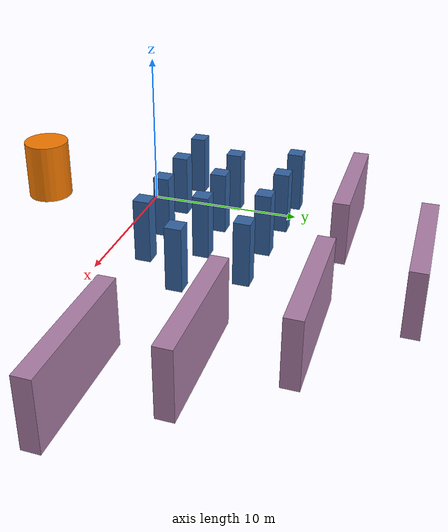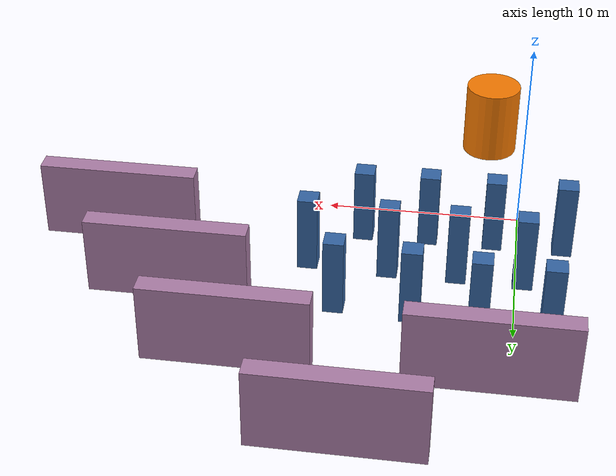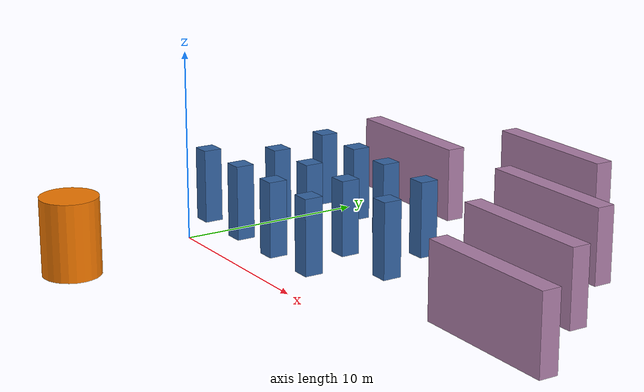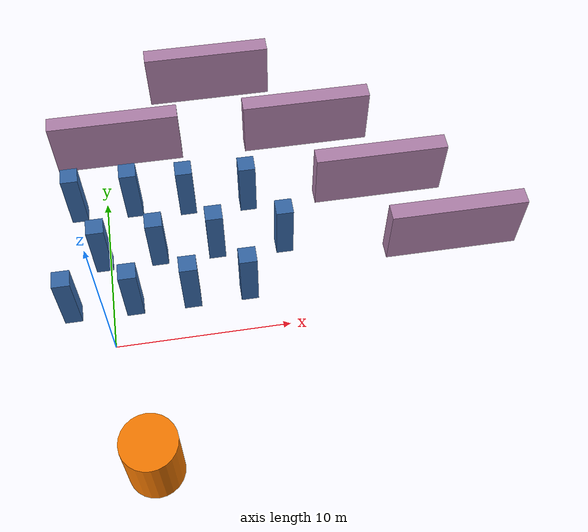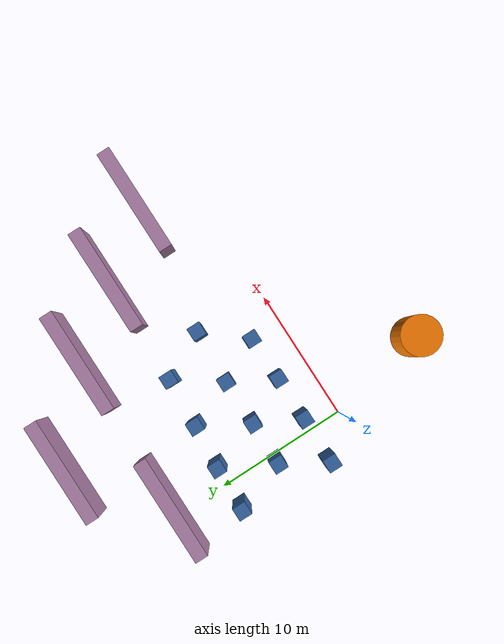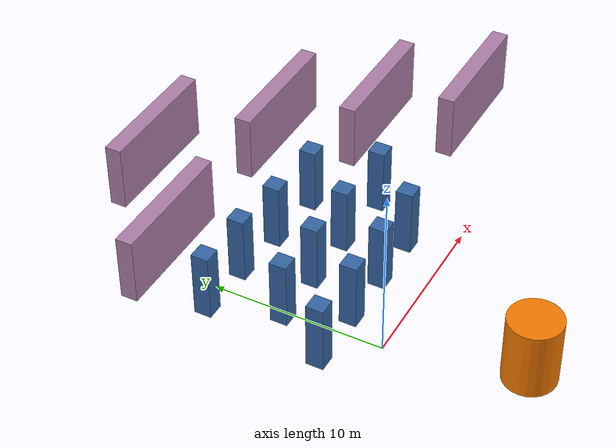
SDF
<sdf version="1.6">
 <world name="vrc_task_1">
  <scene><ambient>0.4 0.4 0.4 1</ambient><background>0.7 0.7 0.7 1</background><shadows>1</shadows></scene>
  <physics name="default_physics" default="0" type="ode">
   <ode>
    <solver>
     <type>quick</type>
     <iters>10</iters>
     <sor>1</sor>
     <use_dynamic_moi_rescaling>0</use_dynamic_moi_rescaling>
    </solver>
    <constraints>
     <cfm>0</cfm>
     <erp>0.2</erp>
     <contact_max_correcting_vel>100</contact_max_correcting_vel>
     <contact_surface_layer>0.001</contact_surface_layer>
    </constraints>
   </ode>
   <max_step_size>0.004</max_step_size>
   <real_time_factor>1</real_time_factor>
   <real_time_update_rate>250</real_time_update_rate>
  </physics>
  <light name="sun" type="directional">
   <pose>0 0 10 0 -0 0</pose>
   <diffuse>0.8 0.8 0.8 1</diffuse>
   <specular>0.2 0.2 0.2 1</specular>
   <attenuation>
    <range>1000</range>
    <constant>0.9</constant>
    <linear>0.01</linear>
    <quadratic>0.001</quadratic>
   </attenuation>
   <direction>-0.5 0.1 -0.9</direction>
  </light>
  <gravity>0 0 -9.8066</gravity>
  <magnetic_field>6e-06 2.3e-05 -4.2e-05</magnetic_field>
  <atmosphere type="adiabatic"/>
  <spherical_coordinates>
   <surface_model>EARTH_WGS84</surface_model>
   <latitude_deg>0</latitude_deg>
   <longitude_deg>0</longitude_deg>
   <elevation>0</elevation>
   <heading_deg>0</heading_deg>
  </spherical_coordinates>
  <audio><device>default</device></audio>
  <model name="unit_cylinder-v1">
   <link name="link">
    <inertial>
     <mass>1</mass>
     <inertia><ixx>0.145833</ixx><ixy>0</ixy><ixz>0</ixz><iyy>0.145833</iyy><iyz>0</iyz><izz>0.125</izz></inertia>
    </inertial>
    <pose>0 0 1.5 0 -0 0</pose>
    <visual name="visual">
     <geometry><cylinder><radius>1.5</radius><length>4</length></cylinder></geometry>
     <material>
      <script><name>Gazebo/Grey</name><uri>file://media/materials/scripts/gazebo.material</uri></script>
      <shader type="vertex"><normal_map>__default__</normal_map></shader>
      <ambient>0.961 0.475 0 1</ambient>
      <diffuse>0.7 0.7 0.7 1</diffuse>
      <specular>0.01 0.01 0.01 1</specular>
      <emissive>0 0 0 1</emissive>
     </material>
    </visual>
    <collision name="collision">
     <geometry><cylinder><radius>1.5</radius><length>4</length></cylinder></geometry>
     <surface>
      <friction>
       <ode><mu>1</mu><mu2>1</mu2><fdir1>0 0 0</fdir1><slip1>0</slip1><slip2>0</slip2></ode>
       <torsional>
        <coefficient>1</coefficient>
        <patch_radius>0</patch_radius>
        <surface_radius>0</surface_radius>
        <use_patch_radius>1</use_patch_radius>
        <ode><slip>0</slip></ode>
       </torsional>
      </friction>
      <bounce><restitution_coefficient>0</restitution_coefficient><threshold>1e+06</threshold></bounce>
      <contact>
       <collide_without_contact>0</collide_without_contact>
       <collide_without_contact_bitmask>1</collide_without_contact_bitmask>
       <collide_bitmask>1</collide_bitmask>
       <ode>
        <soft_cfm>0</soft_cfm>
        <soft_erp>0.2</soft_erp>
        <kp>1e+13</kp>
        <kd>1</kd>
        <max_vel>0.01</max_vel>
        <min_depth>0</min_depth>
       </ode>
       <bullet>
        <split_impulse>1</split_impulse>
        <split_impulse_penetration_threshold>-0.01</split_impulse_penetration_threshold>
        <soft_cfm>0</soft_cfm>
        <soft_erp>0.2</soft_erp>
        <kp>1e+13</kp>
        <kd>1</kd>
       </bullet>
      </contact>
     </surface>
    </collision>
   </link>
   <static>0</static>
   <pose>1.73735 -7.47156 0.499999 3.8e-05 -6e-06 0.002309</pose>
  </model>
  <model name="unit_box-v1">
   <link name="link">
    <inertial>
     <mass>1</mass>
     <inertia>
      <ixx>0.166667</ixx>
      <ixy>0</ixy>
      <ixz>0</ixz>
      <iyy>0.166667</iyy>
      <iyz>0</iyz>
      <izz>0.166667</izz>
     </inertia>
    </inertial>
    <pose>0 0 1.5 0 -0 0</pose>
    <visual name="visual">
     <geometry><box><size>1 1 4</size></box></geometry>
     <material>
      <script><name>Gazebo/Grey</name><uri>file://media/materials/scripts/gazebo.material</uri></script>
      <shader type="vertex"><normal_map>__default__</normal_map></shader>
      <ambient>0.204 0.396 0.643 1</ambient>
      <diffuse>0.7 0.7 0.7 1</diffuse>
      <specular>0.01 0.01 0.01 1</specular>
      <emissive>0 0 0 1</emissive>
     </material>
    </visual>
    <collision name="collision">
     <geometry><box><size>1 1 4</size></box></geometry>
     <surface>
      <friction>
       <ode><mu>1</mu><mu2>1</mu2><fdir1>0 0 0</fdir1><slip1>0</slip1><slip2>0</slip2></ode>
       <torsional>
        <coefficient>1</coefficient>
        <patch_radius>0</patch_radius>
        <surface_radius>0</surface_radius>
        <use_patch_radius>1</use_patch_radius>
        <ode><slip>0</slip></ode>
       </torsional>
      </friction>
      <bounce><restitution_coefficient>0</restitution_coefficient><threshold>1e+06</threshold></bounce>
      <contact>
       <collide_without_contact>0</collide_without_contact>
       <collide_without_contact_bitmask>1</collide_without_contact_bitmask>
       <collide_bitmask>1</collide_bitmask>
       <ode>
        <soft_cfm>0</soft_cfm>
        <soft_erp>0.2</soft_erp>
        <kp>1e+13</kp>
        <kd>1</kd>
        <max_vel>0.01</max_vel>
        <min_depth>0</min_depth>
       </ode>
       <bullet>
        <split_impulse>1</split_impulse>
        <split_impulse_penetration_threshold>-0.01</split_impulse_penetration_threshold>
        <soft_cfm>0</soft_cfm>
        <soft_erp>0.2</soft_erp>
        <kp>1e+13</kp>
        <kd>1</kd>
       </bullet>
      </contact>
     </surface>
    </collision>
   </link>
   <static>0</static>
   <pose>1.25787 2.44015 0.499988 2e-06 4e-06 -0.003005</pose>
  </model>
  <model name="unit_box-v1_clone">
   <link name="link">
    <inertial>
     <mass>1</mass>
     <inertia>
      <ixx>0.166667</ixx>
      <ixy>0</ixy>
      <ixz>0</ixz>
      <iyy>0.166667</iyy>
      <iyz>0</iyz>
      <izz>0.166667</izz>
     </inertia>
    </inertial>
    <pose>0 0 1.5 0 -0 0</pose>
    <visual name="visual">
     <geometry><box><size>1 1 4</size></box></geometry>
     <material>
      <script><name>Gazebo/Grey</name><uri>file://media/materials/scripts/gazebo.material</uri></script>
      <shader type="vertex"><normal_map>__default__</normal_map></shader>
      <ambient>0.204 0.396 0.643 1</ambient>
      <diffuse>0.7 0.7 0.7 1</diffuse>
      <specular>0.01 0.01 0.01 1</specular>
      <emissive>0 0 0 1</emissive>
     </material>
    </visual>
    <collision name="collision">
     <geometry><box><size>1 1 4</size></box></geometry>
     <surface>
      <friction>
       <ode><mu>1</mu><mu2>1</mu2><fdir1>0 0 0</fdir1><slip1>0</slip1><slip2>0</slip2></ode>
       <torsional>
        <coefficient>1</coefficient>
        <patch_radius>0</patch_radius>
        <surface_radius>0</surface_radius>
        <use_patch_radius>1</use_patch_radius>
        <ode><slip>0</slip></ode>
       </torsional>
      </friction>
      <bounce><restitution_coefficient>0</restitution_coefficient><threshold>1e+06</threshold></bounce>
      <contact>
       <collide_without_contact>0</collide_without_contact>
       <collide_without_contact_bitmask>1</collide_without_contact_bitmask>
       <collide_bitmask>1</collide_bitmask>
       <ode>
        <soft_cfm>0</soft_cfm>
        <soft_erp>0.2</soft_erp>
        <kp>1e+13</kp>
        <kd>1</kd>
        <max_vel>0.01</max_vel>
        <min_depth>0</min_depth>
       </ode>
       <bullet>
        <split_impulse>1</split_impulse>
        <split_impulse_penetration_threshold>-0.01</split_impulse_penetration_threshold>
        <soft_cfm>0</soft_cfm>
        <soft_erp>0.2</soft_erp>
        <kp>1e+13</kp>
        <kd>1</kd>
       </bullet>
      </contact>
     </surface>
    </collision>
   </link>
   <static>0</static>
   <pose>4.59565 2.42818 0.499998 -2.4e-05 1e-06 -0.003002</pose>
  </model>
  <model name="unit_box-v1_clone_0">
   <link name="link">
    <inertial>
     <mass>1</mass>
     <inertia>
      <ixx>0.166667</ixx>
      <ixy>0</ixy>
      <ixz>0</ixz>
      <iyy>0.166667</iyy>
      <iyz>0</iyz>
      <izz>0.166667</izz>
     </inertia>
    </inertial>
    <pose>0 0 1.5 0 -0 0</pose>
    <visual name="visual">
     <geometry><box><size>1 1 4</size></box></geometry>
     <material>
      <script><name>Gazebo/Grey</name><uri>file://media/materials/scripts/gazebo.material</uri></script>
      <shader type="vertex"><normal_map>__default__</normal_map></shader>
      <ambient>0.204 0.396 0.643 1</ambient>
      <diffuse>0.7 0.7 0.7 1</diffuse>
      <specular>0.01 0.01 0.01 1</specular>
      <emissive>0 0 0 1</emissive>
     </material>
    </visual>
    <collision name="collision">
     <geometry><box><size>1 1 4</size></box></geometry>
     <surface>
      <friction>
       <ode><mu>1</mu><mu2>1</mu2><fdir1>0 0 0</fdir1><slip1>0</slip1><slip2>0</slip2></ode>
       <torsional>
        <coefficient>1</coefficient>
        <patch_radius>0</patch_radius>
        <surface_radius>0</surface_radius>
        <use_patch_radius>1</use_patch_radius>
        <ode><slip>0</slip></ode>
       </torsional>
      </friction>
      <bounce><restitution_coefficient>0</restitution_coefficient><threshold>1e+06</threshold></bounce>
      <contact>
       <collide_without_contact>0</collide_without_contact>
       <collide_without_contact_bitmask>1</collide_without_contact_bitmask>
       <collide_bitmask>1</collide_bitmask>
       <ode>
        <soft_cfm>0</soft_cfm>
        <soft_erp>0.2</soft_erp>
        <kp>1e+13</kp>
        <kd>1</kd>
        <max_vel>0.01</max_vel>
        <min_depth>0</min_depth>
       </ode>
       <bullet>
        <split_impulse>1</split_impulse>
        <split_impulse_penetration_threshold>-0.01</split_impulse_penetration_threshold>
        <soft_cfm>0</soft_cfm>
        <soft_erp>0.2</soft_erp>
        <kp>1e+13</kp>
        <kd>1</kd>
       </bullet>
      </contact>
     </surface>
    </collision>
   </link>
   <static>0</static>
   <pose>-2.31431 2.48661 0.499998 1e-06 -2.4e-05 -0.003024</pose>
  </model>
  <model name="unit_box-v1_clone_1">
   <link name="link">
    <inertial>
     <mass>1</mass>
     <inertia>
      <ixx>0.166667</ixx>
      <ixy>0</ixy>
      <ixz>0</ixz>
      <iyy>0.166667</iyy>
      <iyz>0</iyz>
      <izz>0.166667</izz>
     </inertia>
    </inertial>
    <pose>0 0 1.5 0 -0 0</pose>
    <visual name="visual">
     <geometry><box><size>1 1 4</size></box></geometry>
     <material>
      <script><name>Gazebo/Grey</name><uri>file://media/materials/scripts/gazebo.material</uri></script>
      <shader type="vertex"><normal_map>__default__</normal_map></shader>
      <ambient>0.204 0.396 0.643 1</ambient>
      <diffuse>0.7 0.7 0.7 1</diffuse>
      <specular>0.01 0.01 0.01 1</specular>
      <emissive>0 0 0 1</emissive>
     </material>
    </visual>
    <collision name="collision">
     <geometry><box><size>1 1 4</size></box></geometry>
     <surface>
      <friction>
       <ode><mu>1</mu><mu2>1</mu2><fdir1>0 0 0</fdir1><slip1>0</slip1><slip2>0</slip2></ode>
       <torsional>
        <coefficient>1</coefficient>
        <patch_radius>0</patch_radius>
        <surface_radius>0</surface_radius>
        <use_patch_radius>1</use_patch_radius>
        <ode><slip>0</slip></ode>
       </torsional>
      </friction>
      <bounce><restitution_coefficient>0</restitution_coefficient><threshold>1e+06</threshold></bounce>
      <contact>
       <collide_without_contact>0</collide_without_contact>
       <collide_without_contact_bitmask>1</collide_without_contact_bitmask>
       <collide_bitmask>1</collide_bitmask>
       <ode>
        <soft_cfm>0</soft_cfm>
        <soft_erp>0.2</soft_erp>
        <kp>1e+13</kp>
        <kd>1</kd>
        <max_vel>0.01</max_vel>
        <min_depth>0</min_depth>
       </ode>
       <bullet>
        <split_impulse>1</split_impulse>
        <split_impulse_penetration_threshold>-0.01</split_impulse_penetration_threshold>
        <soft_cfm>0</soft_cfm>
        <soft_erp>0.2</soft_erp>
        <kp>1e+13</kp>
        <kd>1</kd>
       </bullet>
      </contact>
     </surface>
    </collision>
   </link>
   <static>0</static>
   <pose>7.93143 2.47086 0.499998 -2.4e-05 1e-06 -0.003008</pose>
  </model>
  <model name="unit_box-v1_clone_2">
   <link name="link">
    <inertial>
     <mass>1</mass>
     <inertia>
      <ixx>0.166667</ixx>
      <ixy>0</ixy>
      <ixz>0</ixz>
      <iyy>0.166667</iyy>
      <iyz>0</iyz>
      <izz>0.166667</izz>
     </inertia>
    </inertial>
    <pose>0 0 1.5 0 -0 0</pose>
    <visual name="visual">
     <geometry><box><size>1 1 4</size></box></geometry>
     <material>
      <script><name>Gazebo/Grey</name><uri>file://media/materials/scripts/gazebo.material</uri></script>
      <shader type="vertex"><normal_map>__default__</normal_map></shader>
      <ambient>0.204 0.396 0.643 1</ambient>
      <diffuse>0.7 0.7 0.7 1</diffuse>
      <specular>0.01 0.01 0.01 1</specular>
      <emissive>0 0 0 1</emissive>
     </material>
    </visual>
    <collision name="collision">
     <geometry><box><size>1 1 4</size></box></geometry>
     <surface>
      <friction>
       <ode><mu>1</mu><mu2>1</mu2><fdir1>0 0 0</fdir1><slip1>0</slip1><slip2>0</slip2></ode>
       <torsional>
        <coefficient>1</coefficient>
        <patch_radius>0</patch_radius>
        <surface_radius>0</surface_radius>
        <use_patch_radius>1</use_patch_radius>
        <ode><slip>0</slip></ode>
       </torsional>
      </friction>
      <bounce><restitution_coefficient>0</restitution_coefficient><threshold>1e+06</threshold></bounce>
      <contact>
       <collide_without_contact>0</collide_without_contact>
       <collide_without_contact_bitmask>1</collide_without_contact_bitmask>
       <collide_bitmask>1</collide_bitmask>
       <ode>
        <soft_cfm>0</soft_cfm>
        <soft_erp>0.2</soft_erp>
        <kp>1e+13</kp>
        <kd>1</kd>
        <max_vel>0.01</max_vel>
        <min_depth>0</min_depth>
       </ode>
       <bullet>
        <split_impulse>1</split_impulse>
        <split_impulse_penetration_threshold>-0.01</split_impulse_penetration_threshold>
        <soft_cfm>0</soft_cfm>
        <soft_erp>0.2</soft_erp>
        <kp>1e+13</kp>
        <kd>1</kd>
       </bullet>
      </contact>
     </surface>
    </collision>
   </link>
   <static>0</static>
   <pose>6.38992 5.6238 0.499998 1e-06 -2.4e-05 -0.003031</pose>
  </model>
  <model name="unit_box-v1_clone_3">
   <link name="link">
    <inertial>
     <mass>1</mass>
     <inertia>
      <ixx>0.166667</ixx>
      <ixy>0</ixy>
      <ixz>0</ixz>
      <iyy>0.166667</iyy>
      <iyz>0</iyz>
      <izz>0.166667</izz>
     </inertia>
    </inertial>
    <pose>0 0 1.5 0 -0 0</pose>
    <visual name="visual">
     <geometry><box><size>1 1 4</size></box></geometry>
     <material>
      <script><name>Gazebo/Grey</name><uri>file://media/materials/scripts/gazebo.material</uri></script>
      <shader type="vertex"><normal_map>__default__</normal_map></shader>
      <ambient>0.204 0.396 0.643 1</ambient>
      <diffuse>0.7 0.7 0.7 1</diffuse>
      <specular>0.01 0.01 0.01 1</specular>
      <emissive>0 0 0 1</emissive>
     </material>
    </visual>
    <collision name="collision">
     <geometry><box><size>1 1 4</size></box></geometry>
     <surface>
      <friction>
       <ode><mu>1</mu><mu2>1</mu2><fdir1>0 0 0</fdir1><slip1>0</slip1><slip2>0</slip2></ode>
       <torsional>
        <coefficient>1</coefficient>
        <patch_radius>0</patch_radius>
        <surface_radius>0</surface_radius>
        <use_patch_radius>1</use_patch_radius>
        <ode><slip>0</slip></ode>
       </torsional>
      </friction>
      <bounce><restitution_coefficient>0</restitution_coefficient><threshold>1e+06</threshold></bounce>
      <contact>
       <collide_without_contact>0</collide_without_contact>
       <collide_without_contact_bitmask>1</collide_without_contact_bitmask>
       <collide_bitmask>1</collide_bitmask>
       <ode>
        <soft_cfm>0</soft_cfm>
        <soft_erp>0.2</soft_erp>
        <kp>1e+13</kp>
        <kd>1</kd>
        <max_vel>0.01</max_vel>
        <min_depth>0</min_depth>
       </ode>
       <bullet>
        <split_impulse>1</split_impulse>
        <split_impulse_penetration_threshold>-0.01</split_impulse_penetration_threshold>
        <soft_cfm>0</soft_cfm>
        <soft_erp>0.2</soft_erp>
        <kp>1e+13</kp>
        <kd>1</kd>
       </bullet>
      </contact>
     </surface>
    </collision>
   </link>
   <static>0</static>
   <pose>2.93787 5.63515 0.499998 -2.4e-05 1e-06 -0.003015</pose>
  </model>
  <model name="unit_box-v1_clone_4">
   <link name="link">
    <inertial>
     <mass>1</mass>
     <inertia>
      <ixx>0.166667</ixx>
      <ixy>0</ixy>
      <ixz>0</ixz>
      <iyy>0.166667</iyy>
      <iyz>0</iyz>
      <izz>0.166667</izz>
     </inertia>
    </inertial>
    <pose>0 0 1.5 0 -0 0</pose>
    <visual name="visual">
     <geometry><box><size>1 1 4</size></box></geometry>
     <material>
      <script><name>Gazebo/Grey</name><uri>file://media/materials/scripts/gazebo.material</uri></script>
      <shader type="vertex"><normal_map>__default__</normal_map></shader>
      <ambient>0.204 0.396 0.643 1</ambient>
      <diffuse>0.7 0.7 0.7 1</diffuse>
      <specular>0.01 0.01 0.01 1</specular>
      <emissive>0 0 0 1</emissive>
     </material>
    </visual>
    <collision name="collision">
     <geometry><box><size>1 1 4</size></box></geometry>
     <surface>
      <friction>
       <ode><mu>1</mu><mu2>1</mu2><fdir1>0 0 0</fdir1><slip1>0</slip1><slip2>0</slip2></ode>
       <torsional>
        <coefficient>1</coefficient>
        <patch_radius>0</patch_radius>
        <surface_radius>0</surface_radius>
        <use_patch_radius>1</use_patch_radius>
        <ode><slip>0</slip></ode>
       </torsional>
      </friction>
      <bounce><restitution_coefficient>0</restitution_coefficient><threshold>1e+06</threshold></bounce>
      <contact>
       <collide_without_contact>0</collide_without_contact>
       <collide_without_contact_bitmask>1</collide_without_contact_bitmask>
       <collide_bitmask>1</collide_bitmask>
       <ode>
        <soft_cfm>0</soft_cfm>
        <soft_erp>0.2</soft_erp>
        <kp>1e+13</kp>
        <kd>1</kd>
        <max_vel>0.01</max_vel>
        <min_depth>0</min_depth>
       </ode>
       <bullet>
        <split_impulse>1</split_impulse>
        <split_impulse_penetration_threshold>-0.01</split_impulse_penetration_threshold>
        <soft_cfm>0</soft_cfm>
        <soft_erp>0.2</soft_erp>
        <kp>1e+13</kp>
        <kd>1</kd>
       </bullet>
      </contact>
     </surface>
    </collision>
   </link>
   <static>0</static>
   <pose>-0.362472 5.6803 0.499998 1e-06 -2.4e-05 -0.003037</pose>
  </model>
  <model name="unit_box-v1_clone_5">
   <link name="link">
    <inertial>
     <mass>1</mass>
     <inertia>
      <ixx>0.166667</ixx>
      <ixy>0</ixy>
      <ixz>0</ixz>
      <iyy>0.166667</iyy>
      <iyz>0</iyz>
      <izz>0.166667</izz>
     </inertia>
    </inertial>
    <pose>0 0 1.5 0 -0 0</pose>
    <visual name="visual">
     <geometry><box><size>1 1 4</size></box></geometry>
     <material>
      <script><name>Gazebo/Grey</name><uri>file://media/materials/scripts/gazebo.material</uri></script>
      <shader type="vertex"><normal_map>__default__</normal_map></shader>
      <ambient>0.204 0.396 0.643 1</ambient>
      <diffuse>0.7 0.7 0.7 1</diffuse>
      <specular>0.01 0.01 0.01 1</specular>
      <emissive>0 0 0 1</emissive>
     </material>
    </visual>
    <collision name="collision">
     <geometry><box><size>1 1 4</size></box></geometry>
     <surface>
      <friction>
       <ode><mu>1</mu><mu2>1</mu2><fdir1>0 0 0</fdir1><slip1>0</slip1><slip2>0</slip2></ode>
       <torsional>
        <coefficient>1</coefficient>
        <patch_radius>0</patch_radius>
        <surface_radius>0</surface_radius>
        <use_patch_radius>1</use_patch_radius>
        <ode><slip>0</slip></ode>
       </torsional>
      </friction>
      <bounce><restitution_coefficient>0</restitution_coefficient><threshold>1e+06</threshold></bounce>
      <contact>
       <collide_without_contact>0</collide_without_contact>
       <collide_without_contact_bitmask>1</collide_without_contact_bitmask>
       <collide_bitmask>1</collide_bitmask>
       <ode>
        <soft_cfm>0</soft_cfm>
        <soft_erp>0.2</soft_erp>
        <kp>1e+13</kp>
        <kd>1</kd>
        <max_vel>0.01</max_vel>
        <min_depth>0</min_depth>
       </ode>
       <bullet>
        <split_impulse>1</split_impulse>
        <split_impulse_penetration_threshold>-0.01</split_impulse_penetration_threshold>
        <soft_cfm>0</soft_cfm>
        <soft_erp>0.2</soft_erp>
        <kp>1e+13</kp>
        <kd>1</kd>
       </bullet>
      </contact>
     </surface>
    </collision>
   </link>
   <static>0</static>
   <pose>10.4431 5.41244 0.499998 -2.4e-05 1e-06 -0.003021</pose>
  </model>
  <model name="unit_box-v1_clone_6">
   <link name="link">
    <inertial>
     <mass>1</mass>
     <inertia>
      <ixx>0.166667</ixx>
      <ixy>0</ixy>
      <ixz>0</ixz>
      <iyy>0.166667</iyy>
      <iyz>0</iyz>
      <izz>0.166667</izz>
     </inertia>
    </inertial>
    <pose>0 0 1.5 0 -0 0</pose>
    <visual name="visual">
     <geometry><box><size>1 1 4</size></box></geometry>
     <material>
      <script><name>Gazebo/Grey</name><uri>file://media/materials/scripts/gazebo.material</uri></script>
      <shader type="vertex"><normal_map>__default__</normal_map></shader>
      <ambient>0.204 0.396 0.643 1</ambient>
      <diffuse>0.7 0.7 0.7 1</diffuse>
      <specular>0.01 0.01 0.01 1</specular>
      <emissive>0 0 0 1</emissive>
     </material>
    </visual>
    <collision name="collision">
     <geometry><box><size>1 1 4</size></box></geometry>
     <surface>
      <friction>
       <ode><mu>1</mu><mu2>1</mu2><fdir1>0 0 0</fdir1><slip1>0</slip1><slip2>0</slip2></ode>
       <torsional>
        <coefficient>1</coefficient>
        <patch_radius>0</patch_radius>
        <surface_radius>0</surface_radius>
        <use_patch_radius>1</use_patch_radius>
        <ode><slip>0</slip></ode>
       </torsional>
      </friction>
      <bounce><restitution_coefficient>0</restitution_coefficient><threshold>1e+06</threshold></bounce>
      <contact>
       <collide_without_contact>0</collide_without_contact>
       <collide_without_contact_bitmask>1</collide_without_contact_bitmask>
       <collide_bitmask>1</collide_bitmask>
       <ode>
        <soft_cfm>0</soft_cfm>
        <soft_erp>0.2</soft_erp>
        <kp>1e+13</kp>
        <kd>1</kd>
        <max_vel>0.01</max_vel>
        <min_depth>0</min_depth>
       </ode>
       <bullet>
        <split_impulse>1</split_impulse>
        <split_impulse_penetration_threshold>-0.01</split_impulse_penetration_threshold>
        <soft_cfm>0</soft_cfm>
        <soft_erp>0.2</soft_erp>
        <kp>1e+13</kp>
        <kd>1</kd>
       </bullet>
      </contact>
     </surface>
    </collision>
   </link>
   <static>0</static>
   <pose>8.70267 8.85945 0.499998 1e-06 -2.4e-05 -0.003044</pose>
  </model>
  <model name="unit_box-v1_clone_7">
   <link name="link">
    <inertial>
     <mass>1</mass>
     <inertia>
      <ixx>0.166667</ixx>
      <ixy>0</ixy>
      <ixz>0</ixz>
      <iyy>0.166667</iyy>
      <iyz>0</iyz>
      <izz>0.166667</izz>
     </inertia>
    </inertial>
    <pose>0 0 1.5 0 -0 0</pose>
    <visual name="visual">
     <geometry><box><size>1 1 4</size></box></geometry>
     <material>
      <script><name>Gazebo/Grey</name><uri>file://media/materials/scripts/gazebo.material</uri></script>
      <shader type="vertex"><normal_map>__default__</normal_map></shader>
      <ambient>0.204 0.396 0.643 1</ambient>
      <diffuse>0.7 0.7 0.7 1</diffuse>
      <specular>0.01 0.01 0.01 1</specular>
      <emissive>0 0 0 1</emissive>
     </material>
    </visual>
    <collision name="collision">
     <geometry><box><size>1 1 4</size></box></geometry>
     <surface>
      <friction>
       <ode><mu>1</mu><mu2>1</mu2><fdir1>0 0 0</fdir1><slip1>0</slip1><slip2>0</slip2></ode>
       <torsional>
        <coefficient>1</coefficient>
        <patch_radius>0</patch_radius>
        <surface_radius>0</surface_radius>
        <use_patch_radius>1</use_patch_radius>
        <ode><slip>0</slip></ode>
       </torsional>
      </friction>
      <bounce><restitution_coefficient>0</restitution_coefficient><threshold>1e+06</threshold></bounce>
      <contact>
       <collide_without_contact>0</collide_without_contact>
       <collide_without_contact_bitmask>1</collide_without_contact_bitmask>
       <collide_bitmask>1</collide_bitmask>
       <ode>
        <soft_cfm>0</soft_cfm>
        <soft_erp>0.2</soft_erp>
        <kp>1e+13</kp>
        <kd>1</kd>
        <max_vel>0.01</max_vel>
        <min_depth>0</min_depth>
       </ode>
       <bullet>
        <split_impulse>1</split_impulse>
        <split_impulse_penetration_threshold>-0.01</split_impulse_penetration_threshold>
        <soft_cfm>0</soft_cfm>
        <soft_erp>0.2</soft_erp>
        <kp>1e+13</kp>
        <kd>1</kd>
       </bullet>
      </contact>
     </surface>
    </collision>
   </link>
   <static>0</static>
   <pose>4.97594 9.09635 0.499998 -2.4e-05 1e-06 -0.003028</pose>
  </model>
  <model name="unit_box-v1_clone_8">
   <link name="link">
    <inertial>
     <mass>1</mass>
     <inertia>
      <ixx>0.166667</ixx>
      <ixy>0</ixy>
      <ixz>0</ixz>
      <iyy>0.166667</iyy>
      <iyz>0</iyz>
      <izz>0.166667</izz>
     </inertia>
    </inertial>
    <pose>0 0 1.5 0 -0 0</pose>
    <visual name="visual">
     <geometry><box><size>1 1 4</size></box></geometry>
     <material>
      <script><name>Gazebo/Grey</name><uri>file://media/materials/scripts/gazebo.material</uri></script>
      <shader type="vertex"><normal_map>__default__</normal_map></shader>
      <ambient>0.204 0.396 0.643 1</ambient>
      <diffuse>0.7 0.7 0.7 1</diffuse>
      <specular>0.01 0.01 0.01 1</specular>
      <emissive>0 0 0 1</emissive>
     </material>
    </visual>
    <collision name="collision">
     <geometry><box><size>1 1 4</size></box></geometry>
     <surface>
      <friction>
       <ode><mu>1</mu><mu2>1</mu2><fdir1>0 0 0</fdir1><slip1>0</slip1><slip2>0</slip2></ode>
       <torsional>
        <coefficient>1</coefficient>
        <patch_radius>0</patch_radius>
        <surface_radius>0</surface_radius>
        <use_patch_radius>1</use_patch_radius>
        <ode><slip>0</slip></ode>
       </torsional>
      </friction>
      <bounce><restitution_coefficient>0</restitution_coefficient><threshold>1e+06</threshold></bounce>
      <contact>
       <collide_without_contact>0</collide_without_contact>
       <collide_without_contact_bitmask>1</collide_without_contact_bitmask>
       <collide_bitmask>1</collide_bitmask>
       <ode>
        <soft_cfm>0</soft_cfm>
        <soft_erp>0.2</soft_erp>
        <kp>1e+13</kp>
        <kd>1</kd>
        <max_vel>0.01</max_vel>
        <min_depth>0</min_depth>
       </ode>
       <bullet>
        <split_impulse>1</split_impulse>
        <split_impulse_penetration_threshold>-0.01</split_impulse_penetration_threshold>
        <soft_cfm>0</soft_cfm>
        <soft_erp>0.2</soft_erp>
        <kp>1e+13</kp>
        <kd>1</kd>
       </bullet>
      </contact>
     </surface>
    </collision>
   </link>
   <static>0</static>
   <pose>1.69038 9.41364 0.499998 1e-06 -2.4e-05 -0.00305</pose>
  </model>
  <model name="unit_box-v1_clone_9">
   <link name="link">
    <inertial>
     <mass>1</mass>
     <inertia>
      <ixx>0.166667</ixx>
      <ixy>0</ixy>
      <ixz>0</ixz>
      <iyy>0.166667</iyy>
      <iyz>0</iyz>
      <izz>0.166667</izz>
     </inertia>
    </inertial>
    <pose>0 0 1.5 0 -0 0</pose>
    <visual name="visual">
     <geometry><box><size>1 1 4</size></box></geometry>
     <material>
      <script><name>Gazebo/Grey</name><uri>file://media/materials/scripts/gazebo.material</uri></script>
      <shader type="vertex"><normal_map>__default__</normal_map></shader>
      <ambient>0.204 0.396 0.643 1</ambient>
      <diffuse>0.7 0.7 0.7 1</diffuse>
      <specular>0.01 0.01 0.01 1</specular>
      <emissive>0 0 0 1</emissive>
     </material>
    </visual>
    <collision name="collision">
     <geometry><box><size>1 1 4</size></box></geometry>
     <surface>
      <friction>
       <ode><mu>1</mu><mu2>1</mu2><fdir1>0 0 0</fdir1><slip1>0</slip1><slip2>0</slip2></ode>
       <torsional>
        <coefficient>1</coefficient>
        <patch_radius>0</patch_radius>
        <surface_radius>0</surface_radius>
        <use_patch_radius>1</use_patch_radius>
        <ode><slip>0</slip></ode>
       </torsional>
      </friction>
      <bounce><restitution_coefficient>0</restitution_coefficient><threshold>1e+06</threshold></bounce>
      <contact>
       <collide_without_contact>0</collide_without_contact>
       <collide_without_contact_bitmask>1</collide_without_contact_bitmask>
       <collide_bitmask>1</collide_bitmask>
       <ode>
        <soft_cfm>0</soft_cfm>
        <soft_erp>0.2</soft_erp>
        <kp>1e+13</kp>
        <kd>1</kd>
        <max_vel>0.01</max_vel>
        <min_depth>0</min_depth>
       </ode>
       <bullet>
        <split_impulse>1</split_impulse>
        <split_impulse_penetration_threshold>-0.01</split_impulse_penetration_threshold>
        <soft_cfm>0</soft_cfm>
        <soft_erp>0.2</soft_erp>
        <kp>1e+13</kp>
        <kd>1</kd>
       </bullet>
      </contact>
     </surface>
    </collision>
   </link>
   <static>0</static>
   <pose>-1.70536 9.54036 0.499998 2.4e-05 1e-06 -0.003075</pose>
  </model>
  <model name="unit_box-v1_clone_7_clone_clone">
   <link name="link">
    <inertial>
     <mass>1</mass>
     <inertia>
      <ixx>0.166667</ixx>
      <ixy>0</ixy>
      <ixz>0</ixz>
      <iyy>0.166667</iyy>
      <iyz>0</iyz>
      <izz>0.166667</izz>
     </inertia>
    </inertial>
    <pose>0 -0 1.5 0 -0 0</pose>
    <visual name="visual">
     <geometry><box><size>8 1 4</size></box></geometry>
     <material>
      <script><name>Gazebo/Grey</name><uri>file://media/materials/scripts/gazebo.material</uri></script>
      <shader type="vertex"><normal_map>__default__</normal_map></shader>
      <ambient>0.678 0.498 0.659 1</ambient>
      <diffuse>0.7 0.7 0.7 1</diffuse>
      <specular>0.01 0.01 0.01 1</specular>
      <emissive>0 0 0 1</emissive>
     </material>
    </visual>
    <collision name="collision">
     <geometry><box><size>8 1 4</size></box></geometry>
     <surface>
      <friction>
       <ode><mu>1</mu><mu2>1</mu2><fdir1>0 0 0</fdir1><slip1>0</slip1><slip2>0</slip2></ode>
       <torsional>
        <coefficient>1</coefficient>
        <patch_radius>0</patch_radius>
        <surface_radius>0</surface_radius>
        <use_patch_radius>1</use_patch_radius>
        <ode><slip>0</slip></ode>
       </torsional>
      </friction>
      <bounce><restitution_coefficient>0</restitution_coefficient><threshold>1e+06</threshold></bounce>
      <contact>
       <collide_without_contact>0</collide_without_contact>
       <collide_without_contact_bitmask>1</collide_without_contact_bitmask>
       <collide_bitmask>1</collide_bitmask>
       <ode>
        <soft_cfm>0</soft_cfm>
        <soft_erp>0.2</soft_erp>
        <kp>1e+13</kp>
        <kd>1</kd>
        <max_vel>0.01</max_vel>
        <min_depth>0</min_depth>
       </ode>
       <bullet>
        <split_impulse>1</split_impulse>
        <split_impulse_penetration_threshold>-0.01</split_impulse_penetration_threshold>
        <soft_cfm>0</soft_cfm>
        <soft_erp>0.2</soft_erp>
        <kp>1e+13</kp>
        <kd>1</kd>
       </bullet>
      </contact>
     </surface>
    </collision>
   </link>
   <static>0</static>
   <pose>16.8912 8.7517 0.500001 -2.3e-05 -2e-06 -0.003017</pose>
  </model>
  <model name="unit_box-v1_clone_7_clone_clone_clone">
   <link name="link">
    <inertial>
     <mass>1</mass>
     <inertia>
      <ixx>0.166667</ixx>
      <ixy>0</ixy>
      <ixz>0</ixz>
      <iyy>0.166667</iyy>
      <iyz>0</iyz>
      <izz>0.166667</izz>
     </inertia>
    </inertial>
    <pose>0 -0 1.5 0 -0 0</pose>
    <visual name="visual">
     <geometry><box><size>8 1 4</size></box></geometry>
     <material>
      <script><name>Gazebo/Grey</name><uri>file://media/materials/scripts/gazebo.material</uri></script>
      <shader type="vertex"><normal_map>__default__</normal_map></shader>
      <ambient>0.678 0.498 0.659 1</ambient>
      <diffuse>0.7 0.7 0.7 1</diffuse>
      <specular>0.01 0.01 0.01 1</specular>
      <emissive>0 0 0 1</emissive>
     </material>
    </visual>
    <collision name="collision">
     <geometry><box><size>8 1 4</size></box></geometry>
     <surface>
      <friction>
       <ode><mu>1</mu><mu2>1</mu2><fdir1>0 0 0</fdir1><slip1>0</slip1><slip2>0</slip2></ode>
       <torsional>
        <coefficient>1</coefficient>
        <patch_radius>0</patch_radius>
        <surface_radius>0</surface_radius>
        <use_patch_radius>1</use_patch_radius>
        <ode><slip>0</slip></ode>
       </torsional>
      </friction>
      <bounce><restitution_coefficient>0</restitution_coefficient><threshold>1e+06</threshold></bounce>
      <contact>
       <collide_without_contact>0</collide_without_contact>
       <collide_without_contact_bitmask>1</collide_without_contact_bitmask>
       <collide_bitmask>1</collide_bitmask>
       <ode>
        <soft_cfm>0</soft_cfm>
        <soft_erp>0.2</soft_erp>
        <kp>1e+13</kp>
        <kd>1</kd>
        <max_vel>0.01</max_vel>
        <min_depth>0</min_depth>
       </ode>
       <bullet>
        <split_impulse>1</split_impulse>
        <split_impulse_penetration_threshold>-0.01</split_impulse_penetration_threshold>
        <soft_cfm>0</soft_cfm>
        <soft_erp>0.2</soft_erp>
        <kp>1e+13</kp>
        <kd>1</kd>
       </bullet>
      </contact>
     </surface>
    </collision>
   </link>
   <static>0</static>
   <pose>13.1166 13.571 0.500001 -2.3e-05 -2e-06 -0.003017</pose>
  </model>
  <model name="unit_box-v1_clone_7_clone_clone_clone_clone">
   <link name="link">
    <inertial>
     <mass>1</mass>
     <inertia>
      <ixx>0.166667</ixx>
      <ixy>0</ixy>
      <ixz>0</ixz>
      <iyy>0.166667</iyy>
      <iyz>0</iyz>
      <izz>0.166667</izz>
     </inertia>
    </inertial>
    <pose>0 -0 1.5 0 -0 0</pose>
    <visual name="visual">
     <geometry><box><size>8 1 4</size></box></geometry>
     <material>
      <script><name>Gazebo/Grey</name><uri>file://media/materials/scripts/gazebo.material</uri></script>
      <shader type="vertex"><normal_map>__default__</normal_map></shader>
      <ambient>0.678 0.498 0.659 1</ambient>
      <diffuse>0.7 0.7 0.7 1</diffuse>
      <specular>0.01 0.01 0.01 1</specular>
      <emissive>0 0 0 1</emissive>
     </material>
    </visual>
    <collision name="collision">
     <geometry><box><size>8 1 4</size></box></geometry>
     <surface>
      <friction>
       <ode><mu>1</mu><mu2>1</mu2><fdir1>0 0 0</fdir1><slip1>0</slip1><slip2>0</slip2></ode>
       <torsional>
        <coefficient>1</coefficient>
        <patch_radius>0</patch_radius>
        <surface_radius>0</surface_radius>
        <use_patch_radius>1</use_patch_radius>
        <ode><slip>0</slip></ode>
       </torsional>
      </friction>
      <bounce><restitution_coefficient>0</restitution_coefficient><threshold>1e+06</threshold></bounce>
      <contact>
       <collide_without_contact>0</collide_without_contact>
       <collide_without_contact_bitmask>1</collide_without_contact_bitmask>
       <collide_bitmask>1</collide_bitmask>
       <ode>
        <soft_cfm>0</soft_cfm>
        <soft_erp>0.2</soft_erp>
        <kp>1e+13</kp>
        <kd>1</kd>
        <max_vel>0.01</max_vel>
        <min_depth>0</min_depth>
       </ode>
       <bullet>
        <split_impulse>1</split_impulse>
        <split_impulse_penetration_threshold>-0.01</split_impulse_penetration_threshold>
        <soft_cfm>0</soft_cfm>
        <soft_erp>0.2</soft_erp>
        <kp>1e+13</kp>
        <kd>1</kd>
       </bullet>
      </contact>
     </surface>
    </collision>
   </link>
   <static>0</static>
   <pose>7.34238 18.5953 0.500001 -2.3e-05 -2e-06 -0.003017</pose>
  </model>
  <model name="unit_box-v1_clone_7_clone_clone_clone_clone_0">
   <link name="link">
    <inertial>
     <mass>1</mass>
     <inertia>
      <ixx>0.166667</ixx>
      <ixy>0</ixy>
      <ixz>0</ixz>
      <iyy>0.166667</iyy>
      <iyz>0</iyz>
      <izz>0.166667</izz>
     </inertia>
    </inertial>
    <pose>0 -0 1.5 0 -0 0</pose>
    <visual name="visual">
     <geometry><box><size>8 1 4</size></box></geometry>
     <material>
      <script><name>Gazebo/Grey</name><uri>file://media/materials/scripts/gazebo.material</uri></script>
      <shader type="vertex"><normal_map>__default__</normal_map></shader>
      <ambient>0.678 0.498 0.659 1</ambient>
      <diffuse>0.7 0.7 0.7 1</diffuse>
      <specular>0.01 0.01 0.01 1</specular>
      <emissive>0 0 0 1</emissive>
     </material>
    </visual>
    <collision name="collision">
     <geometry><box><size>8 1 4</size></box></geometry>
     <surface>
      <friction>
       <ode><mu>1</mu><mu2>1</mu2><fdir1>0 0 0</fdir1><slip1>0</slip1><slip2>0</slip2></ode>
       <torsional>
        <coefficient>1</coefficient>
        <patch_radius>0</patch_radius>
        <surface_radius>0</surface_radius>
        <use_patch_radius>1</use_patch_radius>
        <ode><slip>0</slip></ode>
       </torsional>
      </friction>
      <bounce><restitution_coefficient>0</restitution_coefficient><threshold>1e+06</threshold></bounce>
      <contact>
       <collide_without_contact>0</collide_without_contact>
       <collide_without_contact_bitmask>1</collide_without_contact_bitmask>
       <collide_bitmask>1</collide_bitmask>
       <ode>
        <soft_cfm>0</soft_cfm>
        <soft_erp>0.2</soft_erp>
        <kp>1e+13</kp>
        <kd>1</kd>
        <max_vel>0.01</max_vel>
        <min_depth>0</min_depth>
       </ode>
       <bullet>
        <split_impulse>1</split_impulse>
        <split_impulse_penetration_threshold>-0.01</split_impulse_penetration_threshold>
        <soft_cfm>0</soft_cfm>
        <soft_erp>0.2</soft_erp>
        <kp>1e+13</kp>
        <kd>1</kd>
       </bullet>
      </contact>
     </surface>
    </collision>
   </link>
   <static>0</static>
   <pose>1.02571 13.6771 0.500001 -2.3e-05 -2e-06 -0.003017</pose>
  </model>
  <model name="unit_box-v1_clone_7_clone_clone_clone_clone_1">
   <link name="link">
    <inertial>
     <mass>1</mass>
     <inertia>
      <ixx>0.166667</ixx>
      <ixy>0</ixy>
      <ixz>0</ixz>
      <iyy>0.166667</iyy>
      <iyz>0</iyz>
      <izz>0.166667</izz>
     </inertia>
    </inertial>
    <pose>0 -0 1.5 0 -0 0</pose>
    <visual name="visual">
     <geometry><box><size>8 1 4</size></box></geometry>
     <material>
      <script><name>Gazebo/Grey</name><uri>file://media/materials/scripts/gazebo.material</uri></script>
      <shader type="vertex"><normal_map>__default__</normal_map></shader>
      <ambient>0.678 0.498 0.659 1</ambient>
      <diffuse>0.7 0.7 0.7 1</diffuse>
      <specular>0.01 0.01 0.01 1</specular>
      <emissive>0 0 0 1</emissive>
     </material>
    </visual>
    <collision name="collision">
     <geometry><box><size>8 1 4</size></box></geometry>
     <surface>
      <friction>
       <ode><mu>1</mu><mu2>1</mu2><fdir1>0 0 0</fdir1><slip1>0</slip1><slip2>0</slip2></ode>
       <torsional>
        <coefficient>1</coefficient>
        <patch_radius>0</patch_radius>
        <surface_radius>0</surface_radius>
        <use_patch_radius>1</use_patch_radius>
        <ode><slip>0</slip></ode>
       </torsional>
      </friction>
      <bounce><restitution_coefficient>0</restitution_coefficient><threshold>1e+06</threshold></bounce>
      <contact>
       <collide_without_contact>0</collide_without_contact>
       <collide_without_contact_bitmask>1</collide_without_contact_bitmask>
       <collide_bitmask>1</collide_bitmask>
       <ode>
        <soft_cfm>0</soft_cfm>
        <soft_erp>0.2</soft_erp>
        <kp>1e+13</kp>
        <kd>1</kd>
        <max_vel>0.01</max_vel>
        <min_depth>0</min_depth>
       </ode>
       <bullet>
        <split_impulse>1</split_impulse>
        <split_impulse_penetration_threshold>-0.01</split_impulse_penetration_threshold>
        <soft_cfm>0</soft_cfm>
        <soft_erp>0.2</soft_erp>
        <kp>1e+13</kp>
        <kd>1</kd>
       </bullet>
      </contact>
     </surface>
    </collision>
   </link>
   <static>0</static>
   <pose>20.4332 4.06508 0.500001 -2.3e-05 -2e-06 -0.003017</pose>
  </model>
 </world>
</sdf>
